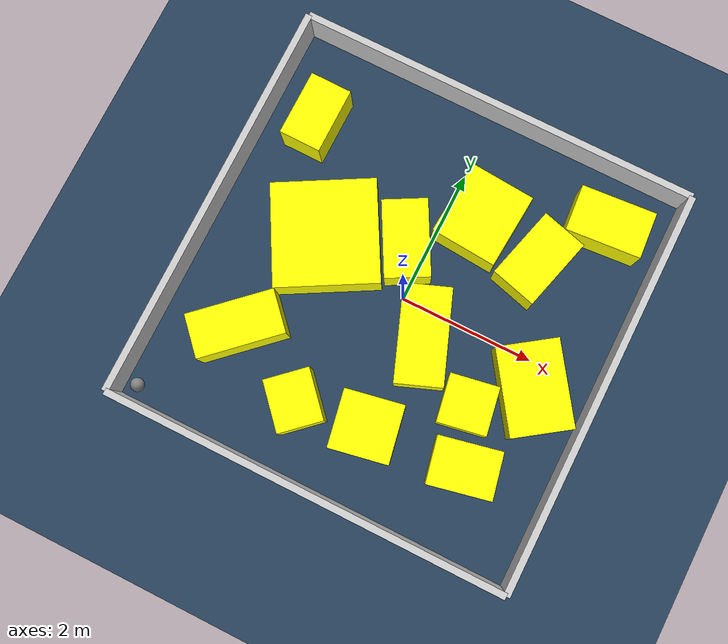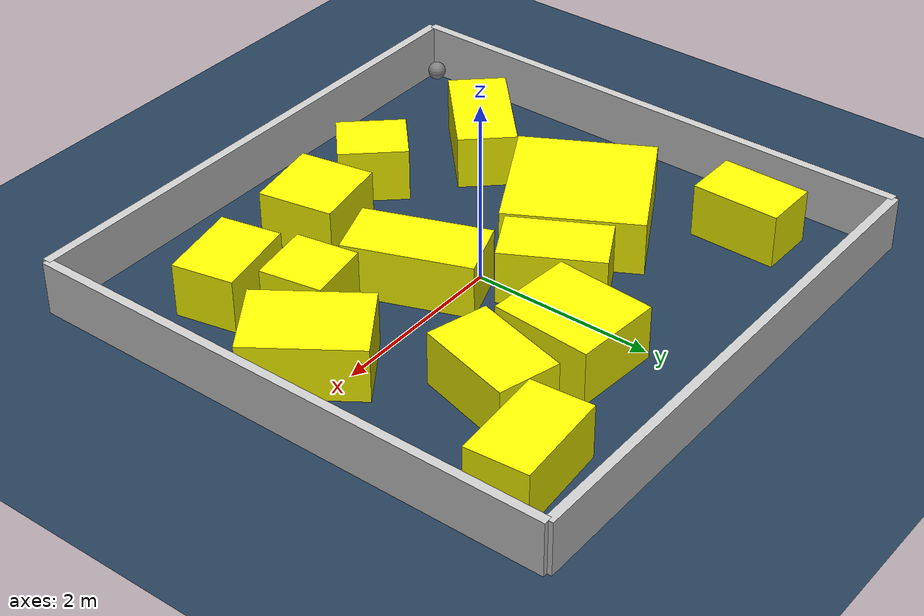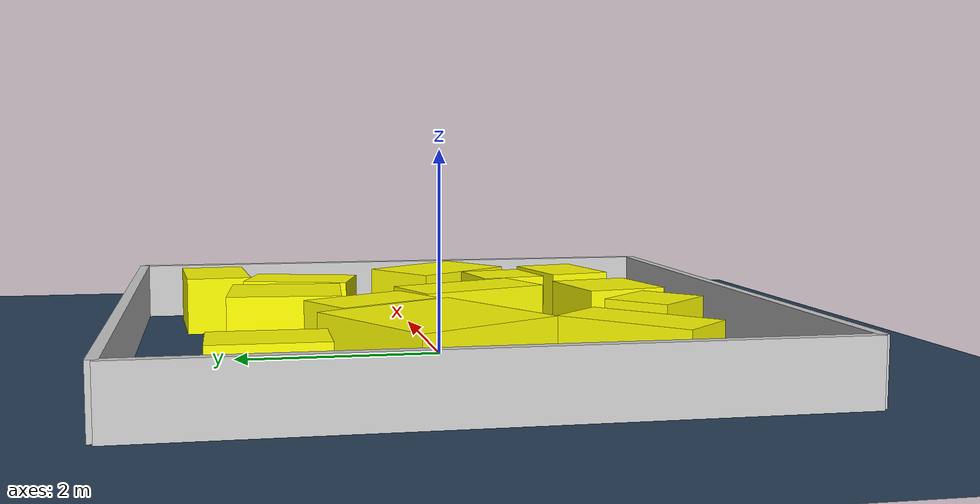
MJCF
<?xml version="1.0" ?>
<mujoco model="generated_environment">
  <option timestep="0.01" integrator="RK4" cone="elliptic"/>
  <default>
    <geom density="1"/>
  </default>
  <asset>
    <texture builtin="gradient" height="3072" rgb1="0.3 0.5 0.7" rgb2="0 0 0" type="skybox" width="512"/>
    <texture builtin="checker" height="300" mark="edge" markrgb="0.8 0.8 0.8" name="groundplane" rgb1="0.2 0.3 0.4" rgb2="0.1 0.2 0.3" type="2d" width="300"/>
    <material name="groundplane" reflectance="0.2" texrepeat="5 5" texture="groundplane" texuniform="true"/>
    <material name="robot" rgba="1.0 1.0 0.0 1.0"/>
  </asset>
  <worldbody>
    <light dir="0 0 -1" directional="true" pos="0 0 1.5"/>
    <geom condim="4" friction="0.5 0.005 0.001" material="groundplane" name="floor" size="0 0 0.05" type="plane"/>
    <body name="walls">
      <geom name="wall_1" condim="4" pos="-3.0 0.0 0.3" rgba="0.800000011920929 0.800000011920929 0.800000011920929 1.0" size="0.05 3.0 0.3" type="box"/>
      <geom name="wall_2" condim="4" pos="3.0 0.0 0.3" rgba="0.800000011920929 0.800000011920929 0.800000011920929 1.0" size="0.05 3.0 0.3" type="box"/>
      <geom name="wall_3" condim="4" pos="0.0 -3.0 0.3" rgba="0.800000011920929 0.800000011920929 0.800000011920929 1.0" size="3.0 0.05 0.3" type="box"/>
      <geom name="wall_4" condim="4" pos="0.0 3.0 0.3" rgba="0.800000011920929 0.800000011920929 0.800000011920929 1.0" size="3.0 0.05 0.3" type="box"/>
    </body>
    <body name="robot">
      <joint name="joint_x" type="slide" pos="0 0 0" axis="1 0 0"/>
      <joint name="joint_y" type="slide" pos="0 0 0" axis="0 1 0"/>
      <geom name="robot" type="sphere" pos="-2.75 -2.75 0.2" size="0.1 0.0 0.0" mass="5.0" friction="1.0 0.005 0.001" condim="4" rgba="0.5 0.5 0.5 1.0"/>
    </body>
    <body name="obstacle_1_movable">
      <geom name="obstacle_1_movable" condim="4" pos="0.4969930770308526 1.478394773980868 0.3" euler="0 0 85.57399022341708" friction="0.0 0.005 0.001" rgba="1 1 0 1" size="0.5530504179986441 0.4853532758178611 0.3" type="box" mass="0.1"/>
      <joint type="free"/>
    </body>
    <body name="obstacle_2_movable">
      <geom name="obstacle_2_movable" condim="4" pos="-1.342563348485531 0.2691682480049158 0.3" euler="0 0 298.9818776365321" friction="0.0 0.005 0.001" rgba="1 1 0 1" size="0.7447863791177197 0.7468035104416166 0.3" type="box" mass="0.1"/>
      <joint type="free"/>
    </body>
    <body name="obstacle_3_movable">
      <geom name="obstacle_3_movable" condim="4" pos="-2.258117650425463 1.7553200618560036 0.3" euler="0 0 179.47898734539422" friction="0.0 0.005 0.001" rgba="1 1 0 1" size="0.3096962031713881 0.48615128657893797 0.3" type="box" mass="0.1"/>
      <joint type="free"/>
    </body>
    <body name="obstacle_4_movable">
      <geom name="obstacle_4_movable" condim="4" pos="0.5060414236122144 -0.3997666099744035 0.3" euler="0 0 110.74212774005017" friction="0.0 0.005 0.001" rgba="1 1 0 1" size="0.6928723144621354 0.34465632378348 0.3" type="box" mass="0.1"/>
      <joint type="free"/>
    </body>
    <body name="obstacle_5_movable">
      <geom name="obstacle_5_movable" condim="4" pos="-0.6725781904728223 -1.9744976730598847 0.3" euler="0 0 132.3505226280152" friction="0.0 0.005 0.001" rgba="1 1 0 1" size="0.3785842464551796 0.32889516476969355 0.3" type="box" mass="0.1"/>
      <joint type="free"/>
    </body>
    <body name="obstacle_6_movable">
      <geom name="obstacle_6_movable" condim="4" pos="1.7907712551532011 -1.7512401047289852 0.3" euler="0 0 11.934984742818692" friction="0.0 0.005 0.001" rgba="1 1 0 1" size="0.4619173964706538 0.3401610002086942 0.3" type="box" mass="0.1"/>
      <joint type="free"/>
    </body>
    <body name="obstacle_7_movable">
      <geom name="obstacle_7_movable" condim="4" pos="2.1692850479766332 -0.3694117628741611 0.3" euler="0 0 304.84208129487456" friction="0.0 0.005 0.001" rgba="1 1 0 1" size="0.6270919710925442 0.4470480804438238 0.3" type="box" mass="0.1"/>
      <joint type="free"/>
    </body>
    <body name="obstacle_8_movable">
      <geom name="obstacle_8_movable" condim="4" pos="1.4603166961897966 1.2597527389585408 0.3" euler="0 0 164.7838973054375" friction="0.0 0.005 0.001" rgba="1 1 0 1" size="0.3441153787624059 0.5503464703752542 0.3" type="box" mass="0.1"/>
      <joint type="free"/>
    </body>
    <body name="obstacle_9_movable">
      <geom name="obstacle_9_movable" condim="4" pos="2.133003296342073 2.1755192295119423 0.3" euler="0 0 4.484242229018123" friction="0.0 0.005 0.001" rgba="1 1 0 1" size="0.5487778899941651 0.3401006928649023 0.3" type="box" mass="0.1"/>
      <joint type="free"/>
    </body>
    <body name="obstacle_10_movable">
      <geom name="obstacle_10_movable" condim="4" pos="-1.8594420902774544 -1.4047943222523367 0.3" euler="0 0 132.84848753122344" friction="0.0 0.005 0.001" rgba="1 1 0 1" size="0.32170297762972916 0.6342243670688452 0.3" type="box" mass="0.1"/>
      <joint type="free"/>
    </body>
    <body name="obstacle_11_movable">
      <geom name="obstacle_11_movable" condim="4" pos="1.464210032703718 -0.9732043680245996 0.3" euler="0 0 99.9361394723626" friction="0.0 0.005 0.001" rgba="1 1 0 1" size="0.3469462261159693 0.3520638744048432 0.3" type="box" mass="0.1"/>
      <joint type="free"/>
    </body>
    <body name="obstacle_12_movable">
      <geom name="obstacle_12_movable" condim="4" pos="0.36805402464232406 -1.8463018332227101 0.3" euler="0 0 280.6215794354056" friction="0.0 0.005 0.001" rgba="1 1 0 1" size="0.4181405661554477 0.4316682090064626 0.3" type="box" mass="0.1"/>
      <joint type="free"/>
    </body>
    <body name="obstacle_13_movable">
      <geom name="obstacle_13_movable" condim="4" pos="-0.3046167685040704 0.7006615957210438 0.3" euler="0 0 118.47809130697806" friction="0.0 0.005 0.001" rgba="1 1 0 1" size="0.5573476902921739 0.3269523395516701 0.3" type="box" mass="0.1"/>
      <joint type="free"/>
    </body>
  </worldbody>
  <actuator>
    <motor name="actuator_x" joint="joint_x" gear="1" ctrlrange="-1 1"/>
    <motor name="actuator_y" joint="joint_y" gear="1" ctrlrange="-1 1"/>
  </actuator>
</mujoco>
